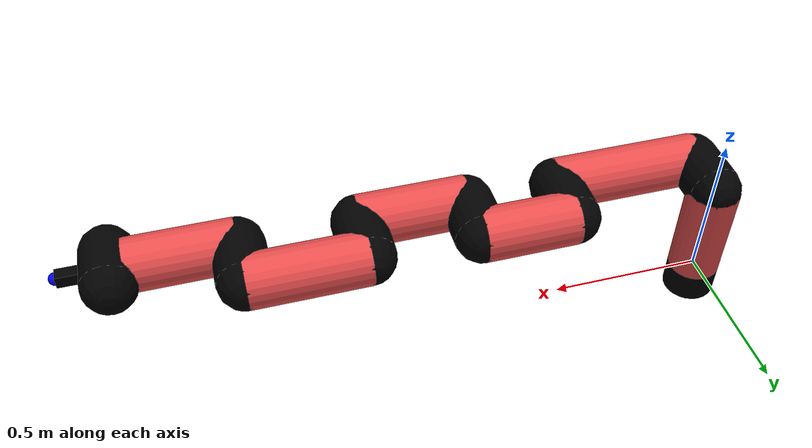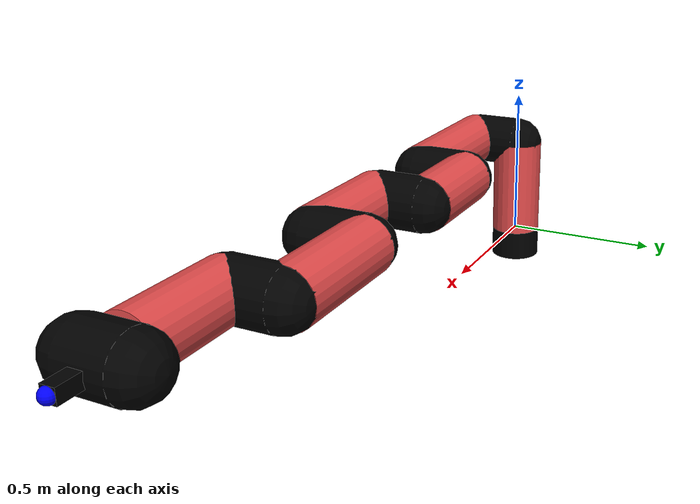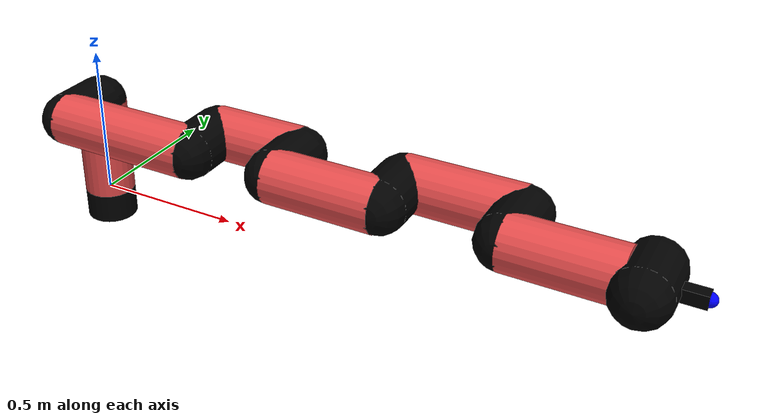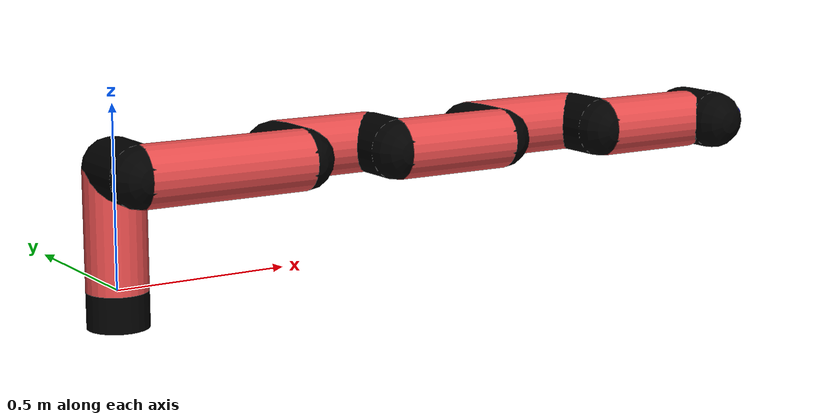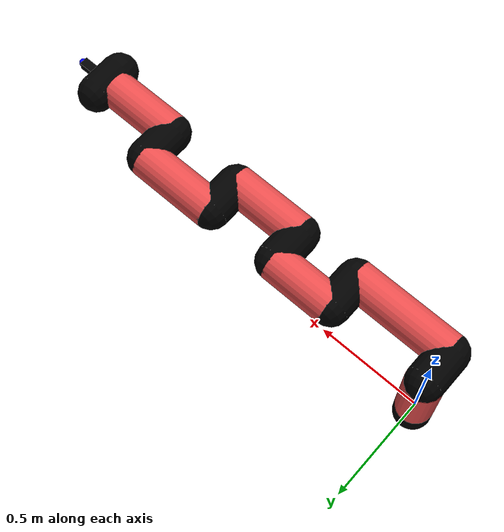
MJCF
<mujoco model="manipulator">
		<compiler angle="degree" coordinate="local" inertiafromgeom="auto" meshdir="meshes/"/>
		<option gravity="0 0 0" integrator="RK4" iterations="30" timestep="0.01"/>

		<default>
		<joint armature="1" limited="true" stiffness="10" damping="15" frictionloss="5.0"/>
		<geom conaffinity="1" condim="3" contype="1" friction=".5 .1 .1" margin="0.002"/>
		<motor ctrllimited="true"/>
		<position ctrllimited="true"/>
		</default>

		<asset>
		<texture builtin="gradient" height="100" rgb1="1.0 1.0 1.0" rgb2="1.0 1.0 1.0" type="skybox" width="100"/>
		<texture builtin="flat" height="32" name="arm_tex" rgb1="0.9 0.3 0.3" type="2d" width="32"/>
		<texture builtin="flat" height="32" name="gripper_tex" rgb1="0.0 0.0 0.0" type="cube" width="32"/>

		<material name="arm_mat" shininess="0.1" specular="0.1" texture="arm_tex"/>
		<material name="gripper_mat" shininess="1" specular="1" texture="gripper_tex"/>
		</asset>

		<worldbody>
		<light cutoff="45" diffuse=".8 .8 .8" dir="0 0.16 -1" directional="false" name="light" pos="0 -2.0 8.0" specular="0.3 0.3 0.3"/>

		<body name="base_link" pos="0 0 -0.1">
		<geom fromto="0 0 0 0 0 0.1" material="arm_mat" name="base_link" rgba="0.0 0.0 0.0 1" size="0.085" type="cylinder"/>
		</body>

		<body name="l1" pos="0 0 0">
<geom fromto="0 0 0 0 0 0.33" material="arm_mat" name="l1" rgba="0.9 0.3 0.3 1" size="0.085" type="cylinder"/>
<geom fromto="0 0 0.33 0 -0.16 0.33" material="arm_mat" name="l1_ex" rgba="0.0 0.0 0.0 1" size="0.085" type="capsule"/>
<joint axis="0 0 1" name="j1" pos="0 0 0" range="-90 90" damping="33.21" frictionloss="9.05"/>

<body name="l2" pos="0 -0.16 0.33">
<geom fromto="0 0 0 0.48 0 0" material="arm_mat" name="l2" rgba="0.9 0.3 0.3 1" size="0.085" type="cylinder"/>
<geom fromto="0.48 0 0 0.48 0.16 0" material="arm_mat" name="l2_ex" rgba="0.0 0.0 0.0 1" size="0.085" type="capsule"/>
<joint axis="0.0 1.0 0.0" name="j2" pos="0 0 0" range="-90 60" damping="27.9" frictionloss="9.74"/>

<body name="l3" pos="0.48 0.16 0">
<geom fromto="0 0 0 0.3 0 0" material="arm_mat" name="l3" rgba="0.9 0.3 0.3 1" size="0.085" type="cylinder"/>
<geom fromto="0.3 0 0 0.3 -0.16 0" material="arm_mat" name="l3_ex" rgba="0.0 0.0 0.0 1" size="0.085" type="capsule"/>
<joint axis="0.0 1.0 0.0" name="j3" pos="0 0 0" range="-30 60" damping="37.12" frictionloss="7.54"/>

<body name="l4" pos="0.3 -0.16 0">
<geom fromto="0 0 0 0.35 0 0" material="arm_mat" name="l4" rgba="0.9 0.3 0.3 1" size="0.085" type="cylinder"/>
<geom fromto="0.35 0 0 0.35 0.16 0" material="arm_mat" name="l4_ex" rgba="0.0 0.0 0.0 1" size="0.085" type="capsule"/>
<joint axis="0.0 1.0 0.0" name="j4" pos="0 0 0" range="-30 60" damping="29.99" frictionloss="11.42"/>

<body name="l5" pos="0.35 0.16 0">
<geom fromto="0 0 0 0.37 0 0" material="arm_mat" name="l5" rgba="0.9 0.3 0.3 1" size="0.085" type="cylinder"/>
<geom fromto="0.37 0 0 0.37 -0.16 0" material="arm_mat" name="l5_ex" rgba="0.0 0.0 0.0 1" size="0.085" type="capsule"/>
<joint axis="0.0 1.0 0.0" name="j5" pos="0 0 0" range="-30 60" damping="22.54" frictionloss="11.43"/>

<body name="l6" pos="0.37 -0.16 0">
<geom fromto="0 0 0 0.33 0 0" material="arm_mat" name="l6" rgba="0.9 0.3 0.3 1" size="0.085" type="cylinder"/>
<joint axis="0.0 1.0 0.0" name="j6" pos="0 0 0" range="-30 60" damping="34.57" frictionloss="11.17"/>

<body name="gripper" pos="0.33 0 0">
<geom fromto="0.05 -0.07 0 0.05 0.07 0" material="gripper_mat" name="gripper" rgba="0.0 0.0 0.0 1" size="0.085" type="capsule"/><joint axis="1 0 0" name="j7" pos="0 0 0" range="-90 90" damping="15" frictionloss="5.0"/><body name="finger" pos="0.1 0 0">
<geom fromto="0 0.0 0 0.1 0.0 0" material="gripper_mat" name="finger" rgba="0.0 0.0 0.0 1" size="0.020 0.06 0.06" type="box"/>
</body>
<site name="current" pos="0.2 0. 0.0" rgba="0. 0. 1.0 1" size="0.02" type="sphere"/>
</body>
</body>
</body>
</body>
</body>
</body>
</body>
</worldbody>
<actuator>
<motor ctrllimited="true" ctrlrange="-1.0 1.0" joint="j1" gear="65.35"/>
<motor ctrllimited="true" ctrlrange="-1.0 1.0" joint="j2" gear="71.69"/>
<motor ctrllimited="true" ctrlrange="-1.0 1.0" joint="j3" gear="69.2"/>
<motor ctrllimited="true" ctrlrange="-1.0 1.0" joint="j4" gear="63.17"/>
<motor ctrllimited="true" ctrlrange="-1.0 1.0" joint="j5" gear="69.82"/>
<motor ctrllimited="true" ctrlrange="-1.0 1.0" joint="j6" gear="98.19"/>
<motor ctrllimited="true" ctrlrange="-1.0 1.0" joint="j7" gear="80"/>
</actuator>
</mujoco>
